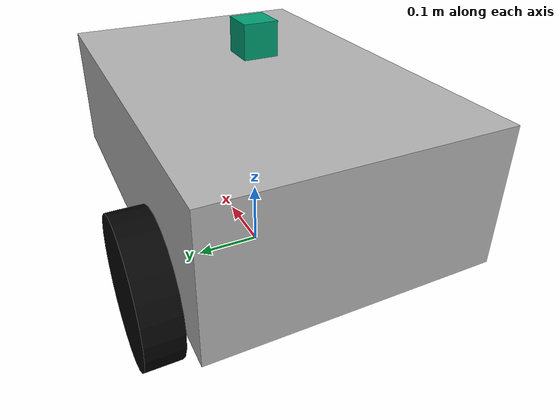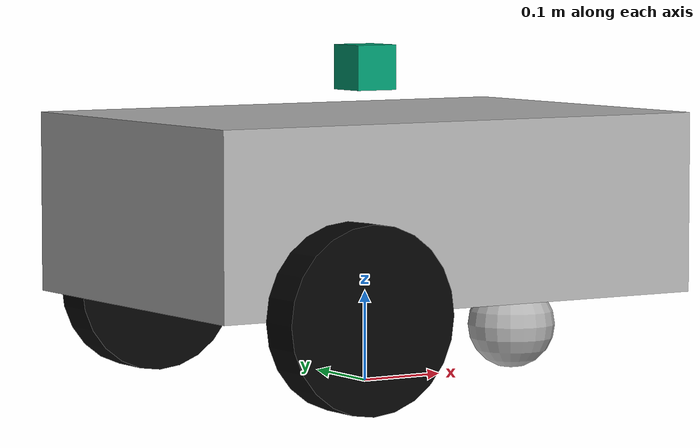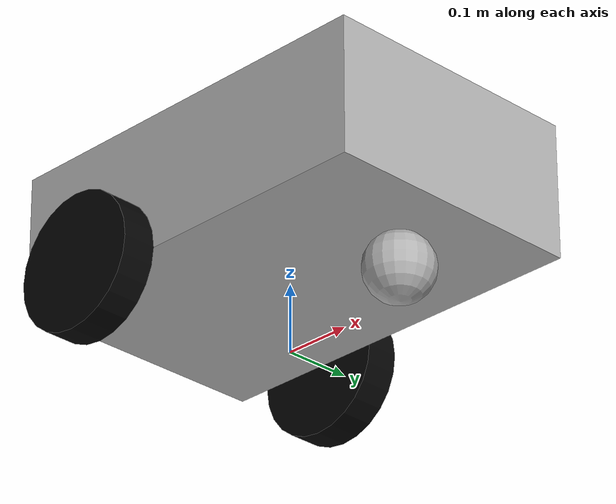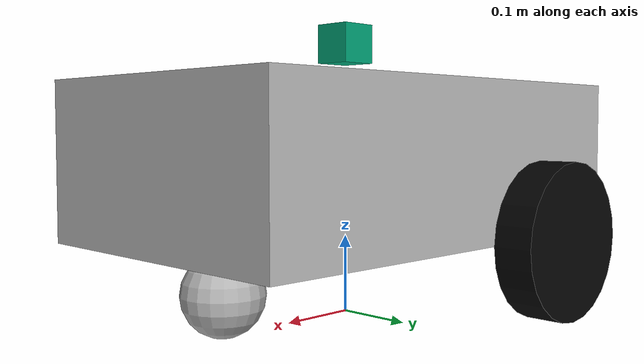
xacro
<?xml version="1.0"?>
<robot xmlns:xacro="http://www.ros.org/wiki/xacro" name="my_robot">

 <xacro:include filename="$(find diff_drive_description)/urdf/common_properties.xacro" />

  <xacro:include filename="$(find diff_drive_description)/urdf/mobile_base_with_lidar_control.xacro" />

  <xacro:include filename="$(find diff_drive_description)/urdf/mobile_base_gazebo_with_lidar_control.xacro" />
  <xacro:mobile_base/>

</robot>

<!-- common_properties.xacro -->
<xacro:properties xmlns:xacro="http://www.ros.org/wiki/xacro">

  <xacro:property name="base_length" value="0.6" />
  <xacro:property name="base_width"  value="0.4" />
  <xacro:property name="base_height" value="0.2" />
  <xacro:property name="wheel_radius" value="0.1" />
  <xacro:property name="wheel_length" value="0.05" />
  <xacro:property name="pi_" value="3.141592653589793" />

  <xacro:property name="base_mass" value="2.0" />
  <xacro:property name="wheel_mass" value="0.2" />
  <xacro:property name="caster_mass" value="0.05" />

  <material name="gray">
    <color rgba="0.7 0.7 0.7 1"/>
  </material>

  <material name="black">
    <color rgba="0.02 0.02 0.02 1"/>
  </material>
</xacro:properties>

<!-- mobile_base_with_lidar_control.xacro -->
<xacro:macro_collection xmlns:xacro="http://www.ros.org/wiki/xacro">

  <xacro:macro name="wheel_link" params="lname radius length mass mat rpy">
    <link name="${lname}">
      <inertial>
        <xacro:cylinder_inertia m="${mass}" r="${radius}" l="${length}" o_xyz="0 0 0" o_rpy="${pi/2.0} 0 0" />
      </inertial>
      <visual>
        <origin xyz="0 0 0" rpy="1.57 0 0"/>
        <geometry>
          <cylinder length="${length}" radius="${radius}"/>
        </geometry>
        <material name="${mat}"/>
      </visual>
      <collision>
        <origin xyz="0 0 0" rpy="${rpy}"/>
        <geometry>
          <sphere radius="${radius}"/>
        </geometry>
      </collision>
    </link>
  </xacro:macro>

  <xacro:macro name="caster_link" params="lname radius mass mat rpy">
    <link name="${lname}">
      <inertial>
        <xacro:sphere_inertia m="${mass}" r="${radius}" o_xyz="0 0 0" o_rpy="0 0 0" />

      </inertial>
      <visual>
        <origin xyz="0 0 0" rpy="${rpy}"/>
        <geometry>
          <sphere radius="${radius}"/>
        </geometry>
        <material name="${mat}"/>
      </visual>
      <collision>
        <origin xyz="0 0 0" rpy="${rpy}"/>
        <geometry>
          <sphere radius="${radius}"/>
        </geometry>
      </collision>
    </link>
  </xacro:macro>

  <xacro:macro name="wheel_joint" params="jname parent child xyz rpy axis type='continuous'">
    <joint name="${jname}" type="${type}">
      <parent link="${parent}"/>
      <child  link="${child}"/>
      <origin xyz="${xyz}" rpy="${rpy}"/>
      <axis xyz="${axis}"/>
    </joint>
  </xacro:macro>

  <xacro:macro name="caster_joint" params="jname parent child xyz rpy type='fixed'">
    <joint name="${jname}" type="${type}">
      <parent link="${parent}"/>
      <child  link="${child}"/>
      <origin xyz="${xyz}" rpy="${rpy}"/>
    </joint>
  </xacro:macro>

<xacro:macro name="cylinder_inertia" params="m r l o_xyz o_rpy">
<mass value="${m}" />
<origin xyz="${o_xyz}" rpy="${o_rpy}" />
<inertia ixx="${(m/12) * (3*r*r + l*l)}" ixy="0" ixz="0" iyy="${(m/12) * (3*r*r + l*l)}" iyz="0" izz="${(m/2) * (r*r)}"/>
</xacro:macro>

<xacro:macro name="sphere_inertia" params="m r o_xyz o_rpy">
<mass value="${m}" />
<origin xyz="${o_xyz}" rpy="${o_rpy}" />
<inertia ixx="${(2/5) * m * r * r}" ixy="0" ixz="0" iyy="${(2/5) * m * r * r}" iyz="0" izz="${(2/5) * m * r * r}" />
</xacro:macro>

<xacro:macro name="box_inertia" params="m x y z o_xyz o_rpy">
<mass value="${m}" />
<origin xyz="${o_xyz}" rpy="${o_rpy}" />
<inertia ixx="${(m/12) * (z*z + y*y)}" ixy="0" ixz="0" iyy="${(m/12) * (x*x + z*z)}" iyz="0" izz="${(m/12) * (x*x + y*y)}" />
</xacro:macro>

  <xacro:macro name="mobile_base" params="">

    <link name="base_footprint"/>

    <link name="base_link">
      <inertial>
        <mass value="${base_mass}"/>
        <origin xyz="0 0 0" rpy="0 0 0"/>
        <inertia ixx="0.02" ixy="0.0" ixz="0.0" iyy="0.02" iyz="0.0" izz="0.02"/>
      </inertial>

      <visual>
        <origin xyz="0 0 ${base_height/2.0}" rpy="0 0 0"/>
        <geometry>
          <box size="${base_length} ${base_width} ${base_height}"/>
        </geometry>
        <material name="gray"/>
      </visual>

      <collision>
        <origin xyz="0 0 ${base_height/2.0}" rpy="0 0 0"/>
        <geometry>
          <box size="${base_length} ${base_width} ${base_height}"/>
        </geometry>
      </collision>
    </link>

    <link name="lidar_link">
    <visual>
      <geometry>
        <box size="0.05 0.05 0.05" />
      </geometry>
      <origin xyz="0 0 0.05" rpy="0 0 0" />
    </visual>
    <collision>
      <geometry>
        <box size="0.05 0.05 0.05" />
      </geometry>
      <origin xyz="0 0 0.05" rpy="0 0 0" />
    </collision>
    <inertial>
      <origin xyz="0 0 0.05" rpy="0 0 0" />
      <mass value="0.1" />
      <inertia ixx="1.0" ixy="0.0" ixz="0.0" iyy="1.0" iyz="0.0" izz="1.0" />
    </inertial>
  </link>

  <joint name="lidar_sensor_joint" type="fixed">
    <parent link="base_link" />
    <child link="lidar_link" />
    <origin xyz="0 0 0.2" rpy="0 0 0" />
  </joint>

    <xacro:wheel_link lname="left_wheel_link"  radius="${wheel_radius}" length="${wheel_length}" mass="${wheel_mass}" mat="black" rpy="0 1.5708 0"/>
    <xacro:wheel_link lname="right_wheel_link" radius="${wheel_radius}" length="${wheel_length}" mass="${wheel_mass}" mat="black" rpy="0 1.5708 0"/>
    <xacro:caster_link lname="caster_link"    radius="${wheel_radius/2.0}" mass="${caster_mass}" mat="gray"  rpy="0 0 0"/>

    <xacro:wheel_joint jname="base_left_wheel_joint"  parent="base_link" child="left_wheel_link"  xyz="${-base_length/4.0} ${(base_width + wheel_length)/2.0} 0" rpy="0 0 0" axis="0 1 0"/>
    <xacro:wheel_joint jname="base_right_wheel_joint" parent="base_link" child="right_wheel_link" xyz="${-base_length/4.0} ${-(base_width + wheel_length)/2.0} 0" rpy="0 0 0" axis="0 1 0"/>
    <xacro:caster_joint jname="base_caster_wheel_joint" parent="base_link" child="caster_link" xyz="${base_length/3.0} 0 ${-(wheel_radius - wheel_radius/2.0)}" rpy="0 0 0"/>

    <joint name="base_joint" type="fixed">
      <parent link="base_footprint"/>
      <child  link="base_link"/>
      <origin xyz="0 0 ${wheel_radius}" rpy="0 0 0"/>
    </joint>
  </xacro:macro>

</xacro:macro_collection>
